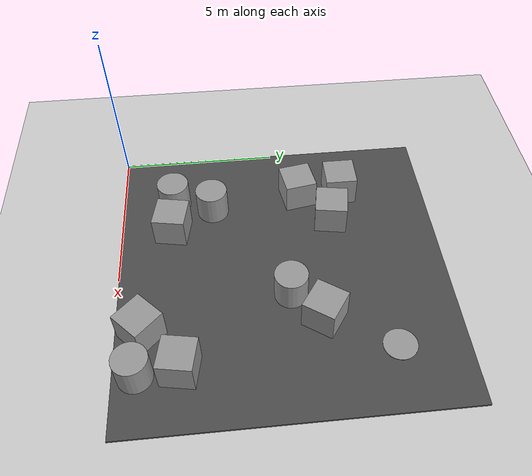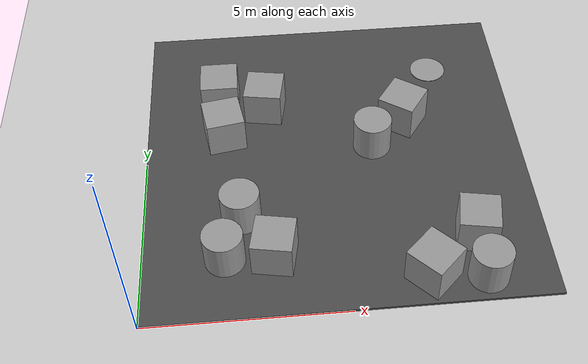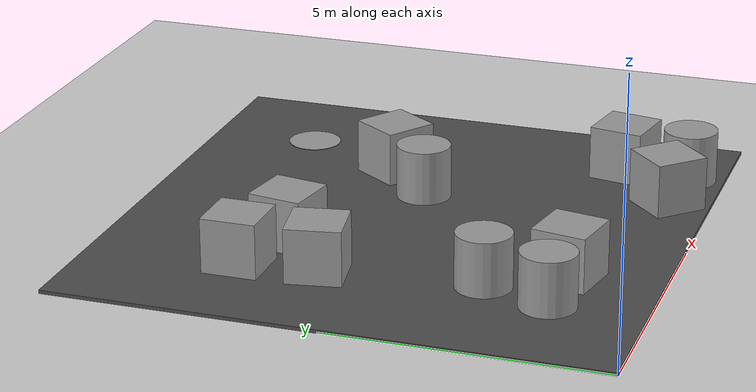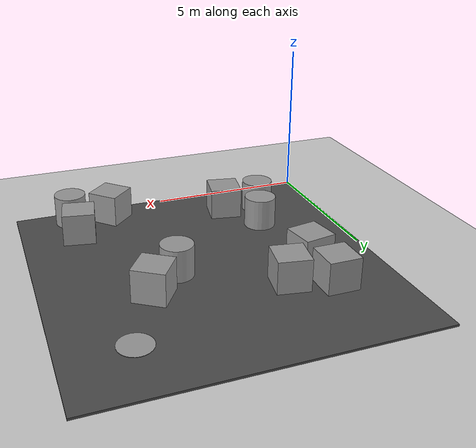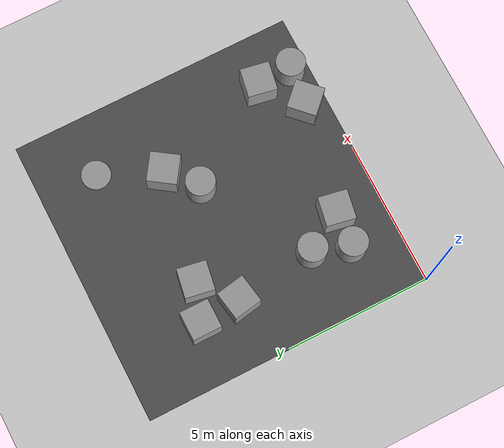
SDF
<sdf version="1.7">
 <world name="default">
  <light name="sun" type="directional">
   <pose>0 0 10 0 -0 0</pose>
   <diffuse>0.8 0.8 0.8 1</diffuse>
   <specular>0.2 0.2 0.2 1</specular>
   <attenuation>
    <range>1000</range>
    <constant>0.9</constant>
    <linear>0.01</linear>
    <quadratic>0.001</quadratic>
   </attenuation>
   <direction>-0.5 0.1 -0.9</direction>
   <spot><inner_angle>0</inner_angle><outer_angle>0</outer_angle><falloff>0</falloff></spot>
  </light>
  <model name="ground_plane">
   <static>1</static>
   <link name="link">
    <collision name="collision">
     <geometry><plane><normal>0 0 1</normal><size>100 100</size></plane></geometry>
     <surface>
      <contact><collide_bitmask>65535</collide_bitmask></contact>
      <friction><ode><mu>100</mu><mu2>50</mu2></ode></friction>
     </surface>
    </collision>
    <visual name="visual">
     <cast_shadows>0</cast_shadows>
     <geometry><plane><normal>0 0 1</normal><size>100 100</size></plane></geometry>
     <material>
      <script><uri>file://media/materials/scripts/gazebo.material</uri><name>Gazebo/Grey</name></script>
     </material>
    </visual>
   </link>
  </model>
  <gravity>0 0 -9.8</gravity>
  <magnetic_field>6e-06 2.3e-05 -4.2e-05</magnetic_field>
  <atmosphere type="adiabatic"/>
  <physics type="ode">
   <max_step_size>0.001</max_step_size>
   <real_time_factor>1</real_time_factor>
   <real_time_update_rate>1000</real_time_update_rate>
  </physics>
  <scene><ambient>0.4 0.4 0.4 1</ambient><background>0.7 0.7 0.7 1</background><shadows>1</shadows></scene>
  <model name="asphalt_plane">
   <static>1</static>
   <link name="link">
    <collision name="collision"><geometry><box><size>10.0033 9.97431 0.1</size></box></geometry></collision>
    <visual name="visual">
     <cast_shadows>0</cast_shadows>
     <geometry><box><size>10.0033 9.97431 0.1</size></box></geometry>
     <material>
      <script>
       <uri>model://asphalt_plane/materials/scripts</uri>
       <uri>model://asphalt_plane/materials/textures</uri>
       <name>vrc/asphalt</name>
      </script>
     </material>
    </visual>
    <velocity_decay><linear>0</linear><angular>0</angular></velocity_decay>
   </link>
   <pose>5 5 0 0 -0 0</pose>
  </model>
  <spherical_coordinates>
   <surface_model>EARTH_WGS84</surface_model>
   <latitude_deg>0</latitude_deg>
   <longitude_deg>0</longitude_deg>
   <elevation>0</elevation>
   <heading_deg>0</heading_deg>
  </spherical_coordinates>
  <model name="unit_box">
   <pose>8.22298 1.88356 0.549999 0 -2e-06 -0.180079</pose>
   <link name="link">
    <inertial>
     <mass>1</mass>
     <inertia>
      <ixx>0.166667</ixx>
      <ixy>0</ixy>
      <ixz>0</ixz>
      <iyy>0.166667</iyy>
      <iyz>0</iyz>
      <izz>0.166667</izz>
     </inertia>
    </inertial>
    <collision name="collision"><geometry><box><size>1 1 1</size></box></geometry></collision>
    <visual name="visual">
     <geometry><box><size>1 1 1</size></box></geometry>
     <material>
      <script><name>Gazebo/Grey</name><uri>file://media/materials/scripts/gazebo.material</uri></script>
     </material>
    </visual>
   </link>
  </model>
  <model name="unit_box_0">
   <pose>6.96603 0.793995 0.55 0 -0 0.776486</pose>
   <link name="link">
    <inertial>
     <mass>1</mass>
     <inertia>
      <ixx>0.166667</ixx>
      <ixy>0</ixy>
      <ixz>0</ixz>
      <iyy>0.166667</iyy>
      <iyz>0</iyz>
      <izz>0.166667</izz>
     </inertia>
    </inertial>
    <collision name="collision"><geometry><box><size>1 1 1</size></box></geometry></collision>
    <visual name="visual">
     <geometry><box><size>1 1 1</size></box></geometry>
     <material>
      <script><name>Gazebo/Grey</name><uri>file://media/materials/scripts/gazebo.material</uri></script>
     </material>
    </visual>
   </link>
  </model>
  <model name="unit_cylinder">
   <pose>8.27908 0.664069 0.549991 1e-06 -0 -5e-05</pose>
   <link name="link">
    <inertial>
     <mass>1</mass>
     <inertia><ixx>0.145833</ixx><ixy>0</ixy><ixz>0</ixz><iyy>0.145833</iyy><iyz>0</iyz><izz>0.125</izz></inertia>
    </inertial>
    <collision name="collision">
     <geometry><cylinder><radius>0.5</radius><length>1</length></cylinder></geometry>
    </collision>
    <visual name="visual">
     <geometry><cylinder><radius>0.5</radius><length>1</length></cylinder></geometry>
     <material>
      <script><name>Gazebo/Grey</name><uri>file://media/materials/scripts/gazebo.material</uri></script>
     </material>
    </visual>
   </link>
  </model>
  <model name="unit_box_1">
   <pose>2.00128 7.16958 0.55 0 -0 0</pose>
   <link name="link">
    <inertial>
     <mass>1</mass>
     <inertia>
      <ixx>0.166667</ixx>
      <ixy>0</ixy>
      <ixz>0</ixz>
      <iyy>0.166667</iyy>
      <iyz>0</iyz>
      <izz>0.166667</izz>
     </inertia>
    </inertial>
    <collision name="collision"><geometry><box><size>1 1 1</size></box></geometry></collision>
    <visual name="visual">
     <geometry><box><size>1 1 1</size></box></geometry>
     <material>
      <script><name>Gazebo/Grey</name><uri>file://media/materials/scripts/gazebo.material</uri></script>
     </material>
    </visual>
   </link>
  </model>
  <model name="unit_box_2">
   <pose>2.0883 5.7621 0.55 0 -0 0.172653</pose>
   <link name="link">
    <inertial>
     <mass>1</mass>
     <inertia>
      <ixx>0.166667</ixx>
      <ixy>0</ixy>
      <ixz>0</ixz>
      <iyy>0.166667</iyy>
      <iyz>0</iyz>
      <izz>0.166667</izz>
     </inertia>
    </inertial>
    <collision name="collision"><geometry><box><size>1 1 1</size></box></geometry></collision>
    <visual name="visual">
     <geometry><box><size>1 1 1</size></box></geometry>
     <material>
      <script><name>Gazebo/Grey</name><uri>file://media/materials/scripts/gazebo.material</uri></script>
     </material>
    </visual>
   </link>
  </model>
  <model name="unit_box_3">
   <pose>3.21979 6.72585 0.549998 4e-06 -1e-06 -0.169773</pose>
   <link name="link">
    <inertial>
     <mass>1</mass>
     <inertia>
      <ixx>0.166667</ixx>
      <ixy>0</ixy>
      <ixz>0</ixz>
      <iyy>0.166667</iyy>
      <iyz>0</iyz>
      <izz>0.166667</izz>
     </inertia>
    </inertial>
    <collision name="collision"><geometry><box><size>1 1 1</size></box></geometry></collision>
    <visual name="visual">
     <geometry><box><size>1 1 1</size></box></geometry>
     <material>
      <script><name>Gazebo/Grey</name><uri>file://media/materials/scripts/gazebo.material</uri></script>
     </material>
    </visual>
   </link>
  </model>
  <model name="unit_box_4">
   <pose>3.23871 1.64741 0.550002 0 -4e-06 -0.183888</pose>
   <link name="link">
    <inertial>
     <mass>1</mass>
     <inertia>
      <ixx>0.166667</ixx>
      <ixy>0</ixy>
      <ixz>0</ixz>
      <iyy>0.166667</iyy>
      <iyz>0</iyz>
      <izz>0.166667</izz>
     </inertia>
    </inertial>
    <collision name="collision"><geometry><box><size>1 1 1</size></box></geometry></collision>
    <visual name="visual">
     <geometry><box><size>1 1 1</size></box></geometry>
     <material>
      <script><name>Gazebo/Grey</name><uri>file://media/materials/scripts/gazebo.material</uri></script>
     </material>
    </visual>
   </link>
  </model>
  <model name="unit_cylinder_0">
   <pose>2.03365 1.69824 0.549992 3e-06 -0 -3.9e-05</pose>
   <link name="link">
    <inertial>
     <mass>1</mass>
     <inertia><ixx>0.145833</ixx><ixy>0</ixy><ixz>0</ixz><iyy>0.145833</iyy><iyz>0</iyz><izz>0.125</izz></inertia>
    </inertial>
    <collision name="collision">
     <geometry><cylinder><radius>0.5</radius><length>1</length></cylinder></geometry>
    </collision>
    <visual name="visual">
     <geometry><cylinder><radius>0.5</radius><length>1</length></cylinder></geometry>
     <material>
      <script><name>Gazebo/Grey</name><uri>file://media/materials/scripts/gazebo.material</uri></script>
     </material>
    </visual>
   </link>
  </model>
  <model name="unit_cylinder_1">
   <pose>2.46041 2.93223 0.55 0 -0 3e-05</pose>
   <link name="link">
    <inertial>
     <mass>1</mass>
     <inertia><ixx>0.145833</ixx><ixy>0</ixy><ixz>0</ixz><iyy>0.145833</iyy><iyz>0</iyz><izz>0.125</izz></inertia>
    </inertial>
    <collision name="collision">
     <geometry><cylinder><radius>0.5</radius><length>1</length></cylinder></geometry>
    </collision>
    <visual name="visual">
     <geometry><cylinder><radius>0.5</radius><length>1</length></cylinder></geometry>
     <material>
      <script><name>Gazebo/Grey</name><uri>file://media/materials/scripts/gazebo.material</uri></script>
     </material>
    </visual>
   </link>
  </model>
  <model name="unit_box_5">
   <pose>6.95037 5.99978 0.55 -0 -0 -0.598567</pose>
   <link name="link">
    <inertial>
     <mass>1</mass>
     <inertia>
      <ixx>0.166667</ixx>
      <ixy>0</ixy>
      <ixz>0</ixz>
      <iyy>0.166667</iyy>
      <iyz>0</iyz>
      <izz>0.166667</izz>
     </inertia>
    </inertial>
    <collision name="collision"><geometry><box><size>1 1 1</size></box></geometry></collision>
    <visual name="visual">
     <geometry><box><size>1 1 1</size></box></geometry>
     <material>
      <script><name>Gazebo/Grey</name><uri>file://media/materials/scripts/gazebo.material</uri></script>
     </material>
    </visual>
   </link>
  </model>
  <model name="unit_cylinder_2">
   <pose>6.0159 5.13727 0.55 1e-06 -0 -2.4e-05</pose>
   <link name="link">
    <inertial>
     <mass>1</mass>
     <inertia><ixx>0.145833</ixx><ixy>0</ixy><ixz>0</ixz><iyy>0.145833</iyy><iyz>0</iyz><izz>0.125</izz></inertia>
    </inertial>
    <collision name="collision">
     <geometry><cylinder><radius>0.5</radius><length>1</length></cylinder></geometry>
    </collision>
    <visual name="visual">
     <geometry><cylinder><radius>0.5</radius><length>1</length></cylinder></geometry>
     <material>
      <script><name>Gazebo/Grey</name><uri>file://media/materials/scripts/gazebo.material</uri></script>
     </material>
    </visual>
   </link>
  </model>
  <model name="unit_cylinder_3_3">
   <link name="link">
    <inertial>
     <mass>1</mass>
     <inertia><ixx>0.145833</ixx><ixy>0</ixy><ixz>0</ixz><iyy>0.145833</iyy><iyz>0</iyz><izz>0.125</izz></inertia>
    </inertial>
    <visual name="visual">
     <geometry><cylinder><radius>0.5</radius><length>0.0238306</length></cylinder></geometry>
     <material>
      <script><name>Gazebo/Grey</name><uri>file://media/materials/scripts/gazebo.material</uri></script>
      <shader type="pixel"/>
     </material>
    </visual>
    <collision name="collision">
     <geometry><cylinder><radius>0.5</radius><length>0.023831</length></cylinder></geometry>
     <surface>
      <friction>
       <ode><mu>1</mu><mu2>1</mu2><fdir1>0 0 0</fdir1><slip1>0</slip1><slip2>0</slip2></ode>
       <torsional>
        <coefficient>1</coefficient>
        <patch_radius>0</patch_radius>
        <surface_radius>0</surface_radius>
        <use_patch_radius>1</use_patch_radius>
        <ode><slip>0</slip></ode>
       </torsional>
      </friction>
      <bounce><restitution_coefficient>0</restitution_coefficient><threshold>1e+06</threshold></bounce>
      <contact>
       <collide_without_contact>0</collide_without_contact>
       <collide_without_contact_bitmask>1</collide_without_contact_bitmask>
       <collide_bitmask>1</collide_bitmask>
       <ode>
        <soft_cfm>0</soft_cfm>
        <soft_erp>0.2</soft_erp>
        <kp>1e+13</kp>
        <kd>1</kd>
        <max_vel>0.01</max_vel>
        <min_depth>0</min_depth>
       </ode>
       <bullet>
        <split_impulse>1</split_impulse>
        <split_impulse_penetration_threshold>-0.01</split_impulse_penetration_threshold>
        <soft_cfm>0</soft_cfm>
        <soft_erp>0.2</soft_erp>
        <kp>1e+13</kp>
        <kd>1</kd>
       </bullet>
      </contact>
     </surface>
    </collision>
   </link>
   <static>1</static>
   <pose>8 8.00001 0.049991 -0 1e-06 -3.8e-05</pose>
  </model>
 </world>
</sdf>
